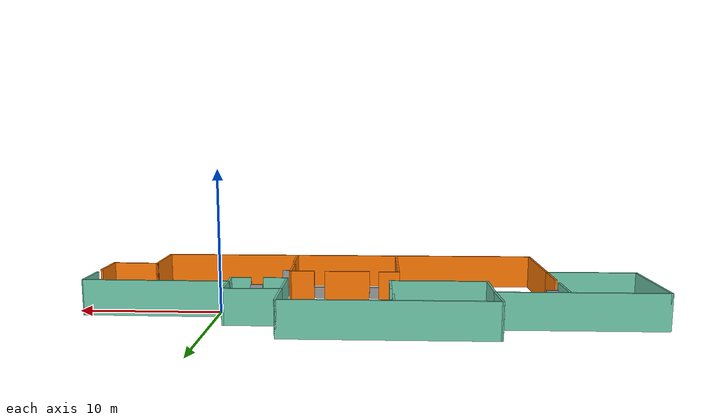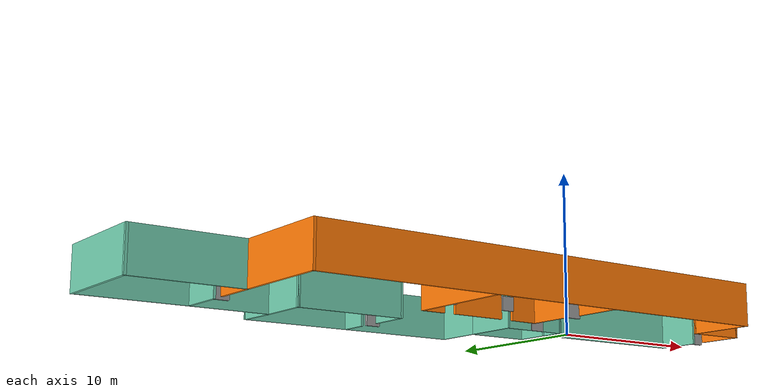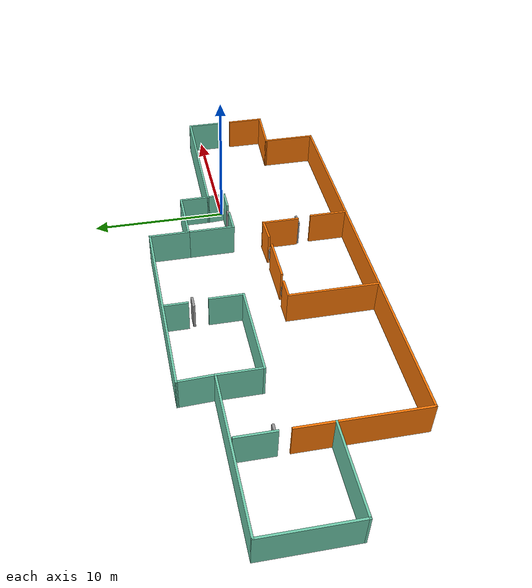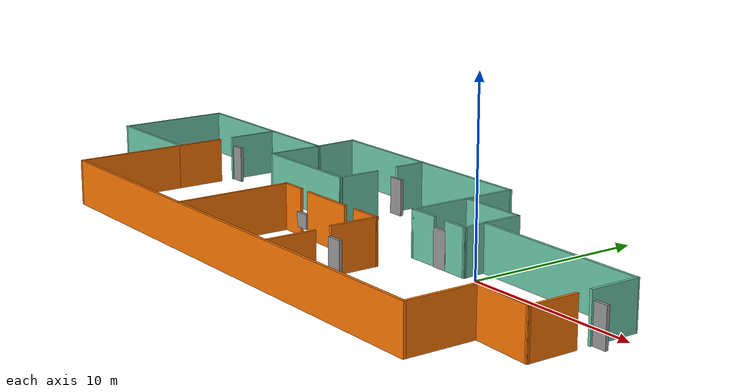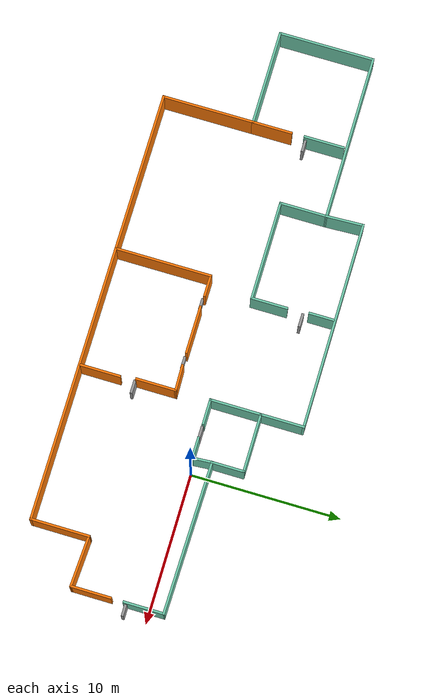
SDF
<?xml version='1.0'?>
<sdf version='1.6'>
  <model name='Building'>
    <pose frame=''>-10.0943 -1.334 0 0 -0 0</pose>
    <link name='Door_0'>
      <collision name='Door_0_Collision'>
        <geometry>
          <box>
            <size>0.9 0.17 2</size>
          </box>
        </geometry>
        <pose frame=''>0 0 1 0 -0 0</pose>
      </collision>
      <visual name='Door_0_Visual'>
        <pose frame=''>0 0 1 0 -0 0</pose>
        <geometry>
          <box>
            <size>0.9 0.17 2</size>
          </box>
        </geometry>
        <material>
          <script>
            <uri>file://media/materials/scripts/gazebo.material</uri>
            <name>Gazebo/Grey</name>
          </script>
        </material>
      </visual>
      <pose frame=''>7.59558 1.21844 0 0 -0 0</pose>
    </link>
    <link name='Door_1'>
      <collision name='Door_1_Collision'>
        <geometry>
          <box>
            <size>0.9 0.17 2</size>
          </box>
        </geometry>
        <pose frame=''>0 0 1 0 -0 0</pose>
      </collision>
      <visual name='Door_1_Visual'>
        <pose frame=''>0 0 1 0 -0 0</pose>
        <geometry>
          <box>
            <size>0.9 0.17 2</size>
          </box>
        </geometry>
        <material>
          <script>
            <uri>file://media/materials/scripts/gazebo.material</uri>
            <name>Gazebo/Grey</name>
          </script>
        </material>
      </visual>
      <pose frame=''>19.7905 -0.145416 0 0 -0 0</pose>
    </link>
    <link name='Door_2'>
      <collision name='Door_2_Collision'>
        <geometry>
          <box>
            <size>0.9 0.17 2</size>
          </box>
        </geometry>
        <pose frame=''>0 0 1 0 -0 0</pose>
      </collision>
      <visual name='Door_2_Visual'>
        <pose frame=''>0 0 1 0 -0 0</pose>
        <geometry>
          <box>
            <size>0.9 0.17 2</size>
          </box>
        </geometry>
        <material>
          <script>
            <uri>file://media/materials/scripts/gazebo.material</uri>
            <name>Gazebo/Grey</name>
          </script>
        </material>
      </visual>
      <pose frame=''>5.94671 -3.77556 0 0 -0 0</pose>
    </link>
    <link name='Door_3'>
      <collision name='Door_3_Collision'>
        <geometry>
          <box>
            <size>0.9 0.17 2</size>
          </box>
        </geometry>
        <pose frame=''>0 0 1 0 -0 0</pose>
      </collision>
      <visual name='Door_3_Visual'>
        <pose frame=''>0 0 1 0 -0 0</pose>
        <geometry>
          <box>
            <size>0.9 0.17 2</size>
          </box>
        </geometry>
        <material>
          <script>
            <uri>file://media/materials/scripts/gazebo.material</uri>
            <name>Gazebo/Grey</name>
          </script>
        </material>
      </visual>
      <pose frame=''>-1.31358 5.33056 0 0 -0 0</pose>
    </link>
    <link name='Door_4'>
      <collision name='Door_4_Collision'>
        <geometry>
          <box>
            <size>0.9 0.17 2</size>
          </box>
        </geometry>
        <pose frame=''>0 0 1 0 -0 0</pose>
      </collision>
      <visual name='Door_4_Visual'>
        <pose frame=''>0 0 1 0 -0 0</pose>
        <geometry>
          <box>
            <size>0.9 0.17 2</size>
          </box>
        </geometry>
        <material>
          <script>
            <uri>file://media/materials/scripts/gazebo.material</uri>
            <name>Gazebo/Grey</name>
          </script>
        </material>
      </visual>
      <pose frame=''>-12.6402 2.25295 0 0 -0 0</pose>
    </link>
    <link name='Wall_0'>
      <collision name='Wall_0_Collision'>
        <geometry>
          <box>
            <size>14 0.15 2.5</size>
          </box>
        </geometry>
        <pose frame=''>0 0 1.25 0 -0 0</pose>
      </collision>
      <visual name='Wall_0_Visual'>
        <pose frame=''>0 0 1.25 0 -0 0</pose>
        <geometry>
          <box>
            <size>14 0.15 2.5</size>
          </box>
        </geometry>
        <material>
          <script>
            <uri>file://media/materials/scripts/gazebo.material</uri>
            <name>Gazebo/Grey</name>
          </script>
          <ambient>0.435294 0.796078 0.67451 1</ambient>
        </material>
        <meta>
          <layer>0</layer>
        </meta>
      </visual>
      <pose frame=''>-1.47677 7.4485 0 0 -0 0</pose>
    </link>
    <link name='Wall_1'>
      <collision name='Wall_1_Collision'>
        <geometry>
          <box>
            <size>3 0.15 2.5</size>
          </box>
        </geometry>
        <pose frame=''>0 0 1.25 0 -0 0</pose>
      </collision>
      <visual name='Wall_1_Visual'>
        <pose frame=''>0 0 1.25 0 -0 0</pose>
        <geometry>
          <box>
            <size>3 0.15 2.5</size>
          </box>
        </geometry>
        <material>
          <script>
            <uri>file://media/materials/scripts/gazebo.material</uri>
            <name>Gazebo/Grey</name>
          </script>
          <ambient>0.435294 0.796078 0.67451 1</ambient>
        </material>
        <meta>
          <layer>0</layer>
        </meta>
      </visual>
      <pose frame=''>5.44822 6.0235 0 0 0 -1.5708</pose>
    </link>
    <link name='Wall_10'>
      <collision name='Wall_10_Collision'>
        <geometry>
          <box>
            <size>6.5 0.15 2.5</size>
          </box>
        </geometry>
        <pose frame=''>0 0 1.25 0 -0 0</pose>
      </collision>
      <visual name='Wall_10_Visual'>
        <pose frame=''>0 0 1.25 0 -0 0</pose>
        <geometry>
          <box>
            <size>6.5 0.15 2.5</size>
          </box>
        </geometry>
        <material>
          <script>
            <uri>file://media/materials/scripts/gazebo.material</uri>
            <name>Gazebo/Grey</name>
          </script>
          <ambient>0.435294 0.796078 0.67451 1</ambient>
        </material>
        <meta>
          <layer>0</layer>
        </meta>
      </visual>
      <pose frame=''>-16.2268 -1.3515 0 0 -0 3.14159</pose>
    </link>
    <link name='Wall_11'>
      <collision name='Wall_11_Collision'>
        <geometry>
          <box>
            <size>6.5 0.15 2.5</size>
          </box>
        </geometry>
        <pose frame=''>0 0 1.25 0 -0 0</pose>
      </collision>
      <visual name='Wall_11_Visual'>
        <pose frame=''>0 0 1.25 0 -0 0</pose>
        <geometry>
          <box>
            <size>6.5 0.15 2.5</size>
          </box>
        </geometry>
        <material>
          <script>
            <uri>file://media/materials/scripts/gazebo.material</uri>
            <name>Gazebo/Grey</name>
          </script>
          <ambient>0.435294 0.796078 0.67451 1</ambient>
        </material>
        <meta>
          <layer>0</layer>
        </meta>
      </visual>
      <pose frame=''>-19.4018 1.8235 0 0 -0 1.5708</pose>
    </link>
    <link name='Wall_12'>
      <collision name='Wall_12_Collision'>
        <geometry>
          <box>
            <size>11.25 0.15 2.5</size>
          </box>
        </geometry>
        <pose frame=''>0 0 1.25 0 -0 0</pose>
      </collision>
      <visual name='Wall_12_Visual'>
        <pose frame=''>0 0 1.25 0 -0 0</pose>
        <geometry>
          <box>
            <size>11.25 0.15 2.5</size>
          </box>
        </geometry>
        <material>
          <script>
            <uri>file://media/materials/scripts/gazebo.material</uri>
            <name>Gazebo/Grey</name>
          </script>
          <ambient>0.435294 0.796078 0.67451 1</ambient>
        </material>
        <meta>
          <layer>0</layer>
        </meta>
      </visual>
      <pose frame=''>-13.8518 4.9985 0 0 -0 0</pose>
    </link>
    <link name='Wall_13'>
      <collision name='Wall_13_Collision'>
        <geometry>
          <box>
            <size>2.60204 0.15 2.5</size>
          </box>
        </geometry>
        <pose frame=''>0 0 1.25 0 -0 0</pose>
      </collision>
      <visual name='Wall_13_Visual'>
        <pose frame=''>0 0 1.25 0 -0 0</pose>
        <geometry>
          <box>
            <size>2.60204 0.15 2.5</size>
          </box>
        </geometry>
        <material>
          <script>
            <uri>file://media/materials/scripts/gazebo.material</uri>
            <name>Gazebo/Grey</name>
          </script>
          <ambient>0.435294 0.796078 0.67451 1</ambient>
        </material>
        <meta>
          <layer>0</layer>
        </meta>
      </visual>
      <pose frame=''>-8.35177 6.2235 0 0 -0 1.61159</pose>
    </link>
    <link name='Wall_15'>
      <collision name='Wall_15_Collision'>
        <geometry>
          <box>
            <size>3.5 0.15 2.5</size>
          </box>
        </geometry>
        <pose frame=''>0 0 1.25 0 -0 0</pose>
      </collision>
      <visual name='Wall_15_Visual'>
        <pose frame=''>0 0 1.25 0 -0 0</pose>
        <geometry>
          <box>
            <size>3.5 0.15 2.5</size>
          </box>
        </geometry>
        <material>
          <script>
            <uri>file://media/materials/scripts/gazebo.material</uri>
            <name>Gazebo/Grey</name>
          </script>
          <ambient>0.435294 0.796078 0.67451 1</ambient>
        </material>
        <meta>
          <layer>0</layer>
        </meta>
      </visual>
      <pose frame=''>5.44822 2.9235 0 0 0 -1.5708</pose>
    </link>
    <link name='Wall_16'>
      <collision name='Wall_16_Collision'>
        <geometry>
          <box>
            <size>1.75 0.15 2.5</size>
          </box>
        </geometry>
        <pose frame=''>0 0 1.25 0 -0 0</pose>
      </collision>
      <visual name='Wall_16_Visual'>
        <pose frame=''>0 0 1.25 0 -0 0</pose>
        <geometry>
          <box>
            <size>1.75 0.15 2.5</size>
          </box>
        </geometry>
        <material>
          <script>
            <uri>file://media/materials/scripts/gazebo.material</uri>
            <name>Gazebo/Grey</name>
          </script>
          <ambient>0.435294 0.796078 0.67451 1</ambient>
        </material>
        <meta>
          <layer>0</layer>
        </meta>
      </visual>
      <pose frame=''>6.24822 1.2485 0 0 -0 0</pose>
    </link>
    <link name='Wall_2'>
      <collision name='Wall_2_Collision'>
        <geometry>
          <box>
            <size>4 0.15 2.5</size>
          </box>
        </geometry>
        <pose frame=''>0 0 1.25 0 -0 0</pose>
      </collision>
      <visual name='Wall_2_Visual'>
        <pose frame=''>0 0 1.25 0 -0 0</pose>
        <geometry>
          <box>
            <size>4 0.15 2.5</size>
          </box>
        </geometry>
        <material>
          <script>
            <uri>file://media/materials/scripts/gazebo.material</uri>
            <name>Gazebo/Grey</name>
          </script>
          <ambient>0.435294 0.796078 0.67451 1</ambient>
        </material>
        <meta>
          <layer>0</layer>
        </meta>
      </visual>
      <pose frame=''>7.37322 4.5985 0 0 -0 0</pose>
    </link>
    <link name='Wall_23'>
      <collision name='Wall_23_Collision'>
        <geometry>
          <box>
            <size>1.5 0.15 2.5</size>
          </box>
        </geometry>
        <pose frame=''>0 0 1.25 0 -0 0</pose>
      </collision>
      <visual name='Wall_23_Visual'>
        <pose frame=''>0 0 1.25 0 -0 0</pose>
        <geometry>
          <box>
            <size>1.5 0.15 2.5</size>
          </box>
        </geometry>
        <material>
          <script>
            <uri>file://media/materials/scripts/gazebo.material</uri>
            <name>Gazebo/Grey</name>
          </script>
          <ambient>0.435294 0.796078 0.67451 1</ambient>
        </material>
        <meta>
          <layer>0</layer>
        </meta>
      </visual>
      <pose frame=''>8.7156 1.21844 0 0 -0 0</pose>
    </link>
    <link name='Wall_24'>
      <collision name='Wall_24_Collision'>
        <geometry>
          <box>
            <size>1.43339 0.15 2.5</size>
          </box>
        </geometry>
        <pose frame=''>0 0 1.25 0 -0 0</pose>
      </collision>
      <visual name='Wall_24_Visual'>
        <pose frame=''>0 0 1.25 0 -0 0</pose>
        <geometry>
          <box>
            <size>1.43339 0.15 2.5</size>
          </box>
        </geometry>
        <material>
          <script>
            <uri>file://media/materials/scripts/gazebo.material</uri>
            <name>Gazebo/Grey</name>
          </script>
          <ambient>0.435294 0.796078 0.67451 1</ambient>
        </material>
        <meta>
          <layer>0</layer>
        </meta>
      </visual>
      <pose frame=''>9.34441 1.85847 0 0 -0 1.64283</pose>
    </link>
    <link name='Wall_26'>
      <collision name='Wall_26_Collision'>
        <geometry>
          <box>
            <size>2.75 0.15 2.5</size>
          </box>
        </geometry>
        <pose frame=''>0 0 1.25 0 -0 0</pose>
      </collision>
      <visual name='Wall_26_Visual'>
        <pose frame=''>0 0 1.25 0 -0 0</pose>
        <geometry>
          <box>
            <size>2.75 0.15 2.5</size>
          </box>
        </geometry>
        <material>
          <script>
            <uri>file://media/materials/scripts/gazebo.material</uri>
            <name>Gazebo/Grey</name>
          </script>
          <ambient>0.435294 0.796078 0.67451 1</ambient>
        </material>
        <meta>
          <layer>0</layer>
        </meta>
      </visual>
      <pose frame=''>19.3982 1.03576 0 0 0 -1.5708</pose>
    </link>
    <link name='Wall_28'>
      <collision name='Wall_28_Collision'>
        <geometry>
          <box>
            <size>2.75 0.15 2.5</size>
          </box>
        </geometry>
        <pose frame=''>0 0 1.25 0 -0 0</pose>
      </collision>
      <visual name='Wall_28_Visual'>
        <pose frame=''>0 0 1.25 0 -0 0</pose>
        <geometry>
          <box>
            <size>2.75 0.15 2.5</size>
          </box>
        </geometry>
        <material>
          <script>
            <uri>file://media/materials/scripts/gazebo.material</uri>
            <name>Gazebo/Grey</name>
          </script>
          <ambient>0.996078 0.47451 0.0196078 1</ambient>
        </material>
        <meta>
          <layer>0</layer>
        </meta>
      </visual>
      <pose frame=''>19.3982 -2.46424 0 0 -0 1.5708</pose>
    </link>
    <link name='Wall_3'>
      <collision name='Wall_3_Collision'>
        <geometry>
          <box>
            <size>2.25 0.15 2.5</size>
          </box>
        </geometry>
        <pose frame=''>0 0 1.25 0 -0 0</pose>
      </collision>
      <visual name='Wall_3_Visual'>
        <pose frame=''>0 0 1.25 0 -0 0</pose>
        <geometry>
          <box>
            <size>2.25 0.15 2.5</size>
          </box>
        </geometry>
        <material>
          <script>
            <uri>file://media/materials/scripts/gazebo.material</uri>
            <name>Gazebo/Grey</name>
          </script>
          <ambient>0.435294 0.796078 0.67451 1</ambient>
        </material>
        <meta>
          <layer>0</layer>
        </meta>
      </visual>
      <pose frame=''>9.29823 3.5485 0 0 0 -1.5708</pose>
    </link>
    <link name='Wall_30'>
      <collision name='Wall_30_Collision'>
        <geometry>
          <box>
            <size>6.5 0.15 2.5</size>
          </box>
        </geometry>
        <pose frame=''>0 0 1.25 0 -0 0</pose>
      </collision>
      <visual name='Wall_30_Visual'>
        <pose frame=''>0 0 1.25 0 -0 0</pose>
        <geometry>
          <box>
            <size>6.5 0.15 2.5</size>
          </box>
        </geometry>
        <material>
          <script>
            <uri>file://media/materials/scripts/gazebo.material</uri>
            <name>Gazebo/Grey</name>
          </script>
          <ambient>0.996078 0.47451 0.0196078 1</ambient>
        </material>
        <meta>
          <layer>0</layer>
        </meta>
      </visual>
      <pose frame=''>-2.35956 -4.23071 0 0 -0 1.5708</pose>
    </link>
    <link name='Wall_32'>
      <collision name='Wall_32_Collision'>
        <geometry>
          <box>
            <size>2.75 0.15 2.5</size>
          </box>
        </geometry>
        <pose frame=''>0 0 1.25 0 -0 0</pose>
      </collision>
      <visual name='Wall_32_Visual'>
        <pose frame=''>0 0 1.25 0 -0 0</pose>
        <geometry>
          <box>
            <size>2.75 0.15 2.5</size>
          </box>
        </geometry>
        <material>
          <script>
            <uri>file://media/materials/scripts/gazebo.material</uri>
            <name>Gazebo/Grey</name>
          </script>
          <ambient>0.996078 0.47451 0.0196078 1</ambient>
        </material>
        <meta>
          <layer>0</layer>
        </meta>
      </visual>
      <pose frame=''>5.49044 -2.3557 0 0 0 -1.5708</pose>
    </link>
    <link name='Wall_34'>
      <collision name='Wall_34_Collision'>
        <geometry>
          <box>
            <size>2.75 0.15 2.5</size>
          </box>
        </geometry>
        <pose frame=''>0 0 1.25 0 -0 0</pose>
      </collision>
      <visual name='Wall_34_Visual'>
        <pose frame=''>0 0 1.25 0 -0 0</pose>
        <geometry>
          <box>
            <size>2.75 0.15 2.5</size>
          </box>
        </geometry>
        <material>
          <script>
            <uri>file://media/materials/scripts/gazebo.material</uri>
            <name>Gazebo/Grey</name>
          </script>
          <ambient>0.996078 0.47451 0.0196078 1</ambient>
        </material>
        <meta>
          <layer>0</layer>
        </meta>
      </visual>
      <pose frame=''>5.63907 -6.06001 0 0 0 -1.5708</pose>
    </link>
    <link name='Wall_36'>
      <collision name='Wall_36_Collision'>
        <geometry>
          <box>
            <size>3.25 0.15 2.5</size>
          </box>
        </geometry>
        <pose frame=''>0 0 1.25 0 -0 0</pose>
      </collision>
      <visual name='Wall_36_Visual'>
        <pose frame=''>0 0 1.25 0 -0 0</pose>
        <geometry>
          <box>
            <size>3.25 0.15 2.5</size>
          </box>
        </geometry>
        <material>
          <script>
            <uri>file://media/materials/scripts/gazebo.material</uri>
            <name>Gazebo/Grey</name>
          </script>
          <ambient>0.435294 0.796078 0.67451 1</ambient>
        </material>
        <meta>
          <layer>0</layer>
        </meta>
      </visual>
      <pose frame=''>-8.30177 3.4485 0 0 0 -1.5708</pose>
    </link>
    <link name='Wall_37'>
      <collision name='Wall_37_Collision'>
        <geometry>
          <box>
            <size>6.75 0.15 2.5</size>
          </box>
        </geometry>
        <pose frame=''>0 0 1.25 0 -0 0</pose>
      </collision>
      <visual name='Wall_37_Visual'>
        <pose frame=''>0 0 1.25 0 -0 0</pose>
        <geometry>
          <box>
            <size>6.75 0.15 2.5</size>
          </box>
        </geometry>
        <material>
          <script>
            <uri>file://media/materials/scripts/gazebo.material</uri>
            <name>Gazebo/Grey</name>
          </script>
          <ambient>0.435294 0.796078 0.67451 1</ambient>
        </material>
        <meta>
          <layer>0</layer>
        </meta>
      </visual>
      <pose frame=''>-5.00178 1.8985 0 0 -0 0</pose>
    </link>
    <link name='Wall_38'>
      <collision name='Wall_38_Collision'>
        <geometry>
          <box>
            <size>2.5 0.15 2.5</size>
          </box>
        </geometry>
        <pose frame=''>0 0 1.25 0 -0 0</pose>
      </collision>
      <visual name='Wall_38_Visual'>
        <pose frame=''>0 0 1.25 0 -0 0</pose>
        <geometry>
          <box>
            <size>2.5 0.15 2.5</size>
          </box>
        </geometry>
        <material>
          <script>
            <uri>file://media/materials/scripts/gazebo.material</uri>
            <name>Gazebo/Grey</name>
          </script>
          <ambient>0.435294 0.796078 0.67451 1</ambient>
        </material>
        <meta>
          <layer>0</layer>
        </meta>
      </visual>
      <pose frame=''>-1.70178 3.0735 0 0 -0 1.5708</pose>
    </link>
    <link name='Wall_4'>
      <collision name='Wall_4_Collision'>
        <geometry>
          <box>
            <size>10.2513 0.15 2.5</size>
          </box>
        </geometry>
        <pose frame=''>0 0 1.25 0 -0 0</pose>
      </collision>
      <visual name='Wall_4_Visual'>
        <pose frame=''>0 0 1.25 0 -0 0</pose>
        <geometry>
          <box>
            <size>10.2513 0.15 2.5</size>
          </box>
        </geometry>
        <material>
          <script>
            <uri>file://media/materials/scripts/gazebo.material</uri>
            <name>Gazebo/Grey</name>
          </script>
          <ambient>0.435294 0.796078 0.67451 1</ambient>
        </material>
        <meta>
          <layer>0</layer>
        </meta>
      </visual>
      <pose frame=''>14.3482 2.41713 0 0 0 -0.016112</pose>
    </link>
    <link name='Wall_42'>
      <collision name='Wall_42_Collision'>
        <geometry>
          <box>
            <size>1.75 0.15 2.5</size>
          </box>
        </geometry>
        <pose frame=''>0 0 1.25 0 -0 0</pose>
      </collision>
      <visual name='Wall_42_Visual'>
        <pose frame=''>0 0 1.25 0 -0 0</pose>
        <geometry>
          <box>
            <size>1.75 0.15 2.5</size>
          </box>
        </geometry>
        <material>
          <script>
            <uri>file://media/materials/scripts/gazebo.material</uri>
            <name>Gazebo/Grey</name>
          </script>
          <ambient>0.435294 0.796078 0.67451 1</ambient>
        </material>
        <meta>
          <layer>0</layer>
        </meta>
      </visual>
      <pose frame=''>-1.80581 6.56126 0 0 -0 1.5708</pose>
    </link>
    <link name='Wall_44'>
      <collision name='Wall_44_Collision'>
        <geometry>
          <box>
            <size>1.5 0.15 2.5</size>
          </box>
        </geometry>
        <pose frame=''>0 0 1.25 0 -0 0</pose>
      </collision>
      <visual name='Wall_44_Visual'>
        <pose frame=''>0 0 1.25 0 -0 0</pose>
        <geometry>
          <box>
            <size>1.5 0.15 2.5</size>
          </box>
        </geometry>
        <material>
          <script>
            <uri>file://media/materials/scripts/gazebo.material</uri>
            <name>Gazebo/Grey</name>
          </script>
          <ambient>0.996078 0.47451 0.0196078 1</ambient>
        </material>
        <meta>
          <layer>0</layer>
        </meta>
      </visual>
      <pose frame=''>-1.68456 -1.05571 0 0 -0 0</pose>
    </link>
    <link name='Wall_46'>
      <collision name='Wall_46_Collision'>
        <geometry>
          <box>
            <size>3.25 0.15 2.5</size>
          </box>
        </geometry>
        <pose frame=''>0 0 1.25 0 -0 0</pose>
      </collision>
      <visual name='Wall_46_Visual'>
        <pose frame=''>0 0 1.25 0 -0 0</pose>
        <geometry>
          <box>
            <size>3.25 0.15 2.5</size>
          </box>
        </geometry>
        <material>
          <script>
            <uri>file://media/materials/scripts/gazebo.material</uri>
            <name>Gazebo/Grey</name>
          </script>
          <ambient>0.996078 0.47451 0.0196078 1</ambient>
        </material>
        <meta>
          <layer>0</layer>
        </meta>
      </visual>
      <pose frame=''>1.36352 -1.10413 0 0 -0 0</pose>
    </link>
    <link name='Wall_48'>
      <collision name='Wall_48_Collision'>
        <geometry>
          <box>
            <size>1.8203 0.15 2.5</size>
          </box>
        </geometry>
        <pose frame=''>0 0 1.25 0 -0 0</pose>
      </collision>
      <visual name='Wall_48_Visual'>
        <pose frame=''>0 0 1.25 0 -0 0</pose>
        <geometry>
          <box>
            <size>1.8203 0.15 2.5</size>
          </box>
        </geometry>
        <material>
          <script>
            <uri>file://media/materials/scripts/gazebo.material</uri>
            <name>Gazebo/Grey</name>
          </script>
          <ambient>0.996078 0.47451 0.0196078 1</ambient>
        </material>
        <meta>
          <layer>0</layer>
        </meta>
      </visual>
      <pose frame=''>4.65564 -1.07992 0 0 -0 0.028994</pose>
    </link>
    <link name='Wall_51'>
      <collision name='Wall_51_Collision'>
        <geometry>
          <box>
            <size>2.75 0.15 2.5</size>
          </box>
        </geometry>
        <pose frame=''>0 0 1.25 0 -0 0</pose>
      </collision>
      <visual name='Wall_51_Visual'>
        <pose frame=''>0 0 1.25 0 -0 0</pose>
        <geometry>
          <box>
            <size>2.75 0.15 2.5</size>
          </box>
        </geometry>
        <material>
          <script>
            <uri>file://media/materials/scripts/gazebo.material</uri>
            <name>Gazebo/Grey</name>
          </script>
          <ambient>0.996078 0.47451 0.0196078 1</ambient>
        </material>
        <meta>
          <layer>0</layer>
        </meta>
      </visual>
      <pose frame=''>-13.0518 -0.051498 0 0 -0 1.5708</pose>
    </link>
    <link name='Wall_53'>
      <collision name='Wall_53_Collision'>
        <geometry>
          <box>
            <size>2.75 0.15 2.5</size>
          </box>
        </geometry>
        <pose frame=''>0 0 1.25 0 -0 0</pose>
      </collision>
      <visual name='Wall_53_Visual'>
        <pose frame=''>0 0 1.25 0 -0 0</pose>
        <geometry>
          <box>
            <size>2.75 0.15 2.5</size>
          </box>
        </geometry>
        <material>
          <script>
            <uri>file://media/materials/scripts/gazebo.material</uri>
            <name>Gazebo/Grey</name>
          </script>
          <ambient>0.435294 0.796078 0.67451 1</ambient>
        </material>
        <meta>
          <layer>0</layer>
        </meta>
      </visual>
      <pose frame=''>-13.0647 3.48219 0 0 -0 1.5708</pose>
    </link>
    <link name='Wall_6'>
      <collision name='Wall_6_Collision'>
        <geometry>
          <box>
            <size>3.50395 0.15 2.5</size>
          </box>
        </geometry>
        <pose frame=''>0 0 1.25 0 -0 0</pose>
      </collision>
      <visual name='Wall_6_Visual'>
        <pose frame=''>0 0 1.25 0 -0 0</pose>
        <geometry>
          <box>
            <size>3.50395 0.15 2.5</size>
          </box>
        </geometry>
        <material>
          <script>
            <uri>file://media/materials/scripts/gazebo.material</uri>
            <name>Gazebo/Grey</name>
          </script>
          <ambient>0.996078 0.47451 0.0196078 1</ambient>
        </material>
        <meta>
          <layer>0</layer>
        </meta>
      </visual>
      <pose frame=''>17.7232 -3.68287 0 0 -0 3.09305</pose>
    </link>
    <link name='Wall_7'>
      <collision name='Wall_7_Collision'>
        <geometry>
          <box>
            <size>4 0.15 2.5</size>
          </box>
        </geometry>
        <pose frame=''>0 0 1.25 0 -0 0</pose>
      </collision>
      <visual name='Wall_7_Visual'>
        <pose frame=''>0 0 1.25 0 -0 0</pose>
        <geometry>
          <box>
            <size>4 0.15 2.5</size>
          </box>
        </geometry>
        <material>
          <script>
            <uri>file://media/materials/scripts/gazebo.material</uri>
            <name>Gazebo/Grey</name>
          </script>
          <ambient>0.996078 0.47451 0.0196078 1</ambient>
        </material>
        <meta>
          <layer>0</layer>
        </meta>
      </visual>
      <pose frame=''>16.0482 -5.5265 0 0 0 -1.5708</pose>
    </link>
    <link name='Wall_8'>
      <collision name='Wall_8_Collision'>
        <geometry>
          <box>
            <size>29.25 0.15 2.5</size>
          </box>
        </geometry>
        <pose frame=''>0 0 1.25 0 -0 0</pose>
      </collision>
      <visual name='Wall_8_Visual'>
        <pose frame=''>0 0 1.25 0 -0 0</pose>
        <geometry>
          <box>
            <size>29.25 0.15 2.5</size>
          </box>
        </geometry>
        <material>
          <script>
            <uri>file://media/materials/scripts/gazebo.material</uri>
            <name>Gazebo/Grey</name>
          </script>
          <ambient>0.996078 0.47451 0.0196078 1</ambient>
        </material>
        <meta>
          <layer>0</layer>
        </meta>
      </visual>
      <pose frame=''>1.49822 -7.4515 0 0 -0 3.14159</pose>
    </link>
    <link name='Wall_9'>
      <collision name='Wall_9_Collision'>
        <geometry>
          <box>
            <size>6.25 0.15 2.5</size>
          </box>
        </geometry>
        <pose frame=''>0 0 1.25 0 -0 0</pose>
      </collision>
      <visual name='Wall_9_Visual'>
        <pose frame=''>0 0 1.25 0 -0 0</pose>
        <geometry>
          <box>
            <size>6.25 0.15 2.5</size>
          </box>
        </geometry>
        <material>
          <script>
            <uri>file://media/materials/scripts/gazebo.material</uri>
            <name>Gazebo/Grey</name>
          </script>
          <ambient>0.996078 0.47451 0.0196078 1</ambient>
        </material>
        <meta>
          <layer>0</layer>
        </meta>
      </visual>
      <pose frame=''>-13.0518 -4.4015 0 0 -0 1.5708</pose>
    </link>
    <link name='Window_0'>
      <collision name='Window_0_Collision'>
        <geometry>
          <box>
            <size>0.8 0.17 0.8</size>
          </box>
        </geometry>
        <pose frame=''>0 0 0.4 0 -0 0</pose>
      </collision>
      <visual name='Window_0_Visual'>
        <pose frame=''>0 0 0.4 0 -0 0</pose>
        <geometry>
          <box>
            <size>0.8 0.17 0.8</size>
          </box>
        </geometry>
        <material>
          <script>
            <uri>file://media/materials/scripts/gazebo.material</uri>
            <name>Gazebo/Grey</name>
          </script>
        </material>
      </visual>
      <pose frame=''>-0.636777 -1.19139 0.5 0 -0 0</pose>
    </link>
    <link name='Window_1'>
      <collision name='Window_1_Collision'>
        <geometry>
          <box>
            <size>0.8 0.17 0.8</size>
          </box>
        </geometry>
        <pose frame=''>0 0 0.4 0 -0 0</pose>
      </collision>
      <visual name='Window_1_Visual'>
        <pose frame=''>0 0 0.4 0 -0 0</pose>
        <geometry>
          <box>
            <size>0.8 0.17 0.8</size>
          </box>
        </geometry>
        <material>
          <script>
            <uri>file://media/materials/scripts/gazebo.material</uri>
            <name>Gazebo/Grey</name>
          </script>
        </material>
      </visual>
      <pose frame=''>3.36253 -1.19139 0.5 0 -0 0</pose>
    </link>
    <static>1</static>
  </model>
</sdf>
